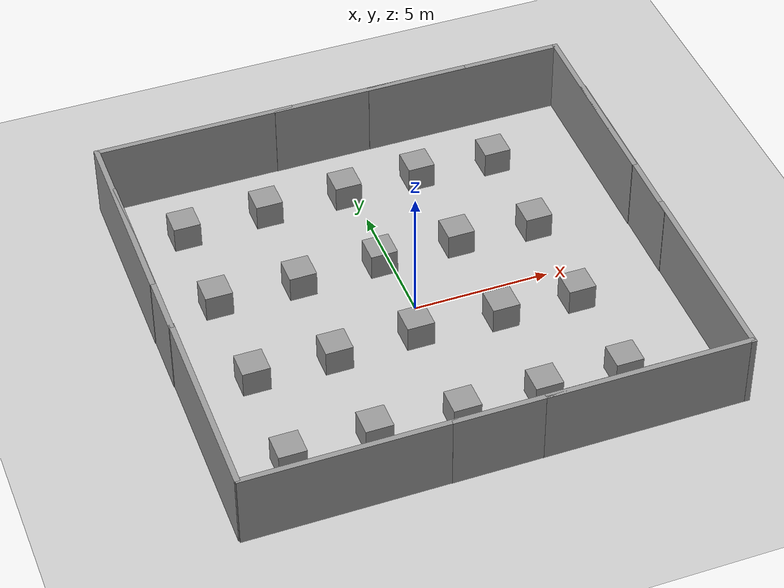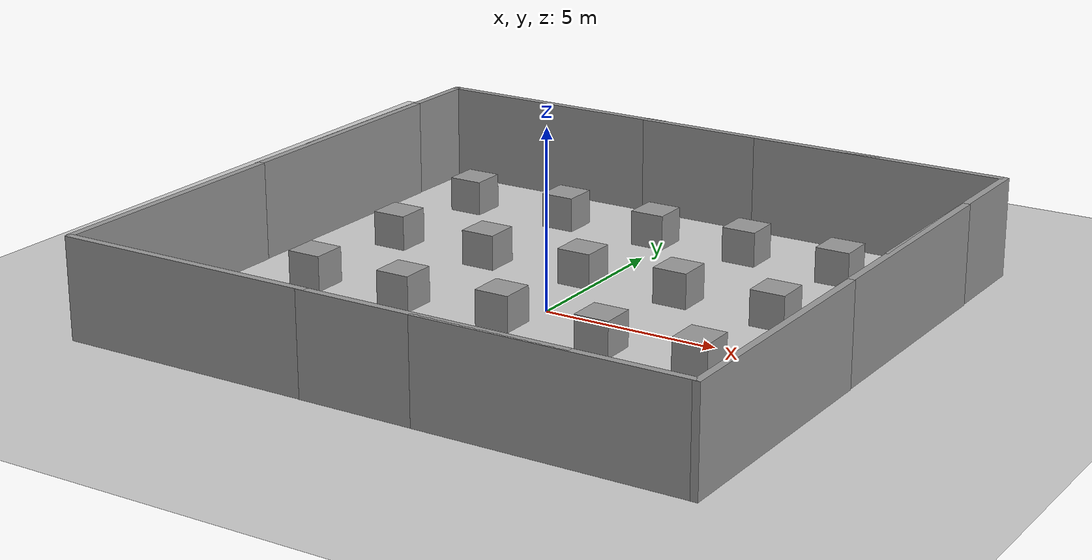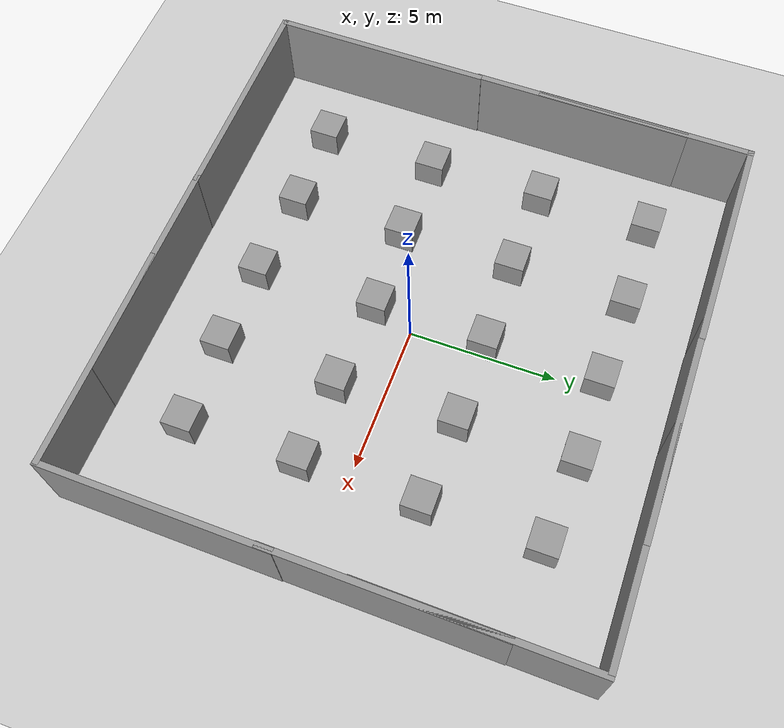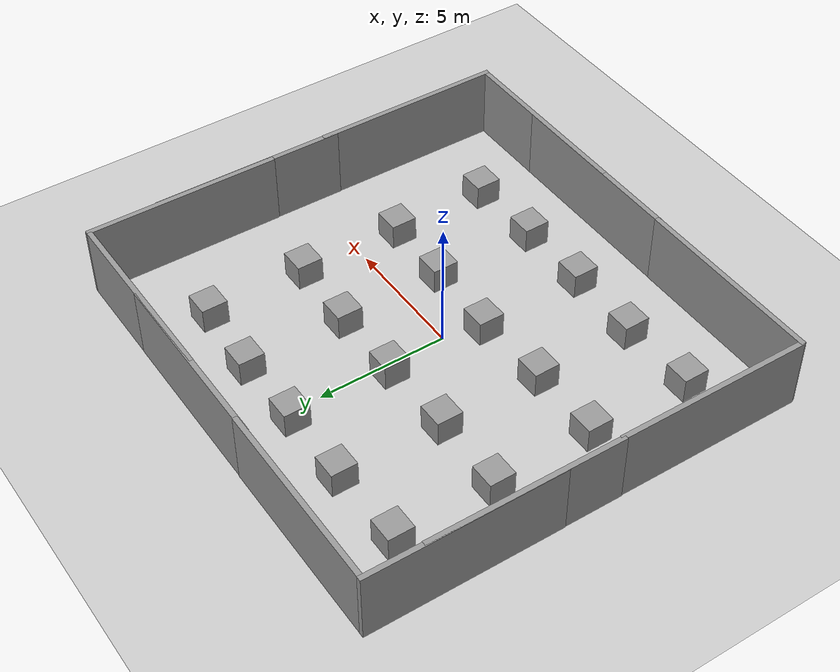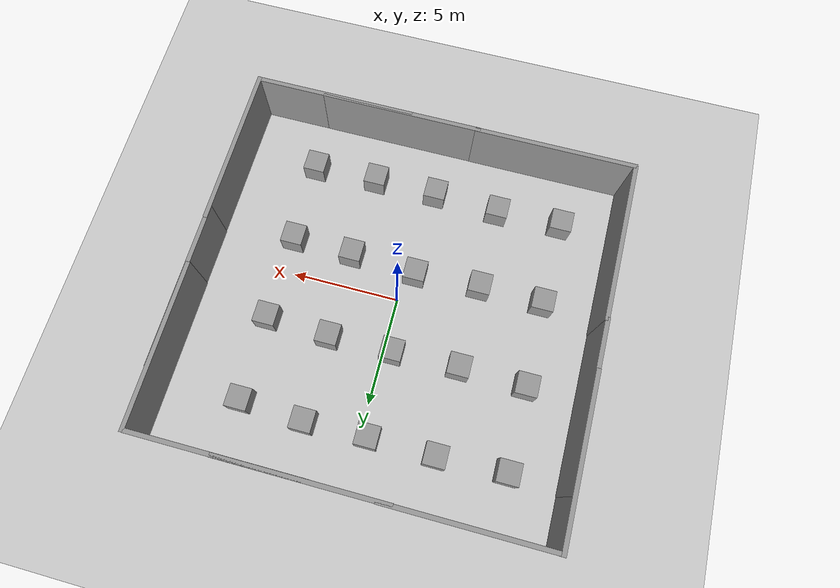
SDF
<sdf version="1.6">
 <world name="chase">
  <light name="sun" type="directional">
   <pose>0 0 10 0 -0 0</pose>
   <diffuse>0.8 0.8 0.8 1</diffuse>
   <specular>0.1 0.1 0.1 1</specular>
   <attenuation>
    <range>1000</range>
    <constant>0.9</constant>
    <linear>0.01</linear>
    <quadratic>0.001</quadratic>
   </attenuation>
   <direction>-0.5 0.5 -1</direction>
  </light>
  <model name="ground_plane">
   <static>1</static>
   <link name="link">
    <collision name="collision">
     <geometry><plane><normal>0 0 1</normal><size>100 100</size></plane></geometry>
     <surface><friction><ode><mu>100</mu><mu2>50</mu2></ode></friction></surface>
    </collision>
    <visual name="visual">
     <cast_shadows>0</cast_shadows>
     <geometry><plane><normal>0 0 1</normal><size>100 100</size></plane></geometry>
     <material>
      <script><uri>file://media/materials/scripts/gazebo.material</uri><name>Gazebo/Grey</name></script>
     </material>
    </visual>
   </link>
  </model>
  <gravity>0 0 -9.8</gravity>
  <magnetic_field>6e-06 2.3e-05 -4.2e-05</magnetic_field>
  <atmosphere type="adiabatic"/>
  <physics name="default_physics" default="0" type="ode">
   <max_step_size>0.001</max_step_size>
   <real_time_factor>1</real_time_factor>
   <real_time_update_rate>1000</real_time_update_rate>
  </physics>
  <scene><ambient>0.4 0.4 0.4 1</ambient><background>0.7 0.7 0.7 1</background><shadows>1</shadows></scene>
  <spherical_coordinates>
   <surface_model>EARTH_WGS84</surface_model>
   <latitude_deg>0</latitude_deg>
   <longitude_deg>0</longitude_deg>
   <elevation>0</elevation>
   <heading_deg>0</heading_deg>
  </spherical_coordinates>
  <model name="grey_wall">
   <static>1</static>
   <link name="link">
    <pose>0 0 1.4 0 -0 0</pose>
    <collision name="collision"><geometry><box><size>7.5 0.2 2.8</size></box></geometry></collision>
    <visual name="visual">
     <cast_shadows>0</cast_shadows>
     <geometry><box><size>7.5 0.2 2.8</size></box></geometry>
     <material>
      <script>
       <uri>model://grey_wall/materials/scripts</uri>
       <uri>model://grey_wall/materials/textures</uri>
       <name>vrc/grey_wall</name>
      </script>
     </material>
    </visual>
   </link>
   <pose>-5.31955 -8.0721 0 0 -0 0</pose>
  </model>
  <model name="grey_wall_clone">
   <static>1</static>
   <link name="link">
    <pose>0 0 1.4 0 -0 0</pose>
    <collision name="collision"><geometry><box><size>7.5 0.2 2.8</size></box></geometry></collision>
    <visual name="visual">
     <cast_shadows>0</cast_shadows>
     <geometry><box><size>7.5 0.2 2.8</size></box></geometry>
     <material>
      <script>
       <uri>model://grey_wall/materials/scripts</uri>
       <uri>model://grey_wall/materials/textures</uri>
       <name>vrc/grey_wall</name>
      </script>
     </material>
    </visual>
   </link>
   <pose>1.94381 -8.08113 0 0 -0 0</pose>
  </model>
  <model name="grey_wall_clone_0">
   <static>1</static>
   <link name="link">
    <pose>0 0 1.4 0 -0 0</pose>
    <collision name="collision"><geometry><box><size>7.5 0.2 2.8</size></box></geometry></collision>
    <visual name="visual">
     <cast_shadows>0</cast_shadows>
     <geometry><box><size>7.5 0.2 2.8</size></box></geometry>
     <material>
      <script>
       <uri>model://grey_wall/materials/scripts</uri>
       <uri>model://grey_wall/materials/textures</uri>
       <name>vrc/grey_wall</name>
      </script>
     </material>
    </visual>
   </link>
   <pose>5.18635 -8.08529 0 0 -0 0</pose>
  </model>
  <model name="grey_wall_clone_1">
   <static>1</static>
   <link name="link">
    <pose>0 0 1.4 0 -0 0</pose>
    <collision name="collision"><geometry><box><size>7.5 0.2 2.8</size></box></geometry></collision>
    <visual name="visual">
     <cast_shadows>0</cast_shadows>
     <geometry><box><size>7.5 0.2 2.8</size></box></geometry>
     <material>
      <script>
       <uri>model://grey_wall/materials/scripts</uri>
       <uri>model://grey_wall/materials/textures</uri>
       <name>vrc/grey_wall</name>
      </script>
     </material>
    </visual>
   </link>
   <pose>-5.2187 8.89135 0 0 -0 0</pose>
  </model>
  <model name="grey_wall_clone_2">
   <static>1</static>
   <link name="link">
    <pose>0 0 1.4 0 -0 0</pose>
    <collision name="collision"><geometry><box><size>7.5 0.2 2.8</size></box></geometry></collision>
    <visual name="visual">
     <cast_shadows>0</cast_shadows>
     <geometry><box><size>7.5 0.2 2.8</size></box></geometry>
     <material>
      <script>
       <uri>model://grey_wall/materials/scripts</uri>
       <uri>model://grey_wall/materials/textures</uri>
       <name>vrc/grey_wall</name>
      </script>
     </material>
    </visual>
   </link>
   <pose>1.56864 8.87538 0 0 -0 0</pose>
  </model>
  <model name="grey_wall_clone_2_clone">
   <static>1</static>
   <link name="link">
    <pose>0 0 1.4 0 -0 0</pose>
    <collision name="collision"><geometry><box><size>7.5 0.2 2.8</size></box></geometry></collision>
    <visual name="visual">
     <cast_shadows>0</cast_shadows>
     <geometry><box><size>7.5 0.2 2.8</size></box></geometry>
     <material>
      <script>
       <uri>model://grey_wall/materials/scripts</uri>
       <uri>model://grey_wall/materials/textures</uri>
       <name>vrc/grey_wall</name>
      </script>
     </material>
    </visual>
   </link>
   <pose>5.21808 8.86699 0 0 -0 0</pose>
  </model>
  <model name="grey_wall_clone_2_clone_0">
   <static>1</static>
   <link name="link">
    <pose>0 0 1.4 0 -0 0</pose>
    <collision name="collision"><geometry><box><size>7.5 0.2 2.8</size></box></geometry></collision>
    <visual name="visual">
     <cast_shadows>0</cast_shadows>
     <geometry><box><size>7.5 0.2 2.8</size></box></geometry>
     <material>
      <script>
       <uri>model://grey_wall/materials/scripts</uri>
       <uri>model://grey_wall/materials/textures</uri>
       <name>vrc/grey_wall</name>
      </script>
     </material>
    </visual>
   </link>
   <pose>-8.96704 -4.34279 0 0 0 -1.58054</pose>
  </model>
  <model name="grey_wall_clone_2_clone_0_clone">
   <static>1</static>
   <link name="link">
    <pose>0 0 1.4 0 -0 0</pose>
    <collision name="collision"><geometry><box><size>7.5 0.2 2.8</size></box></geometry></collision>
    <visual name="visual">
     <cast_shadows>0</cast_shadows>
     <geometry><box><size>7.5 0.2 2.8</size></box></geometry>
     <material>
      <script>
       <uri>model://grey_wall/materials/scripts</uri>
       <uri>model://grey_wall/materials/textures</uri>
       <name>vrc/grey_wall</name>
      </script>
     </material>
    </visual>
   </link>
   <pose>-8.91912 2.99652 0 0 0 -1.58054</pose>
  </model>
  <model name="grey_wall_clone_2_clone_0_clone_0">
   <static>1</static>
   <link name="link">
    <pose>0 0 1.4 0 -0 0</pose>
    <collision name="collision"><geometry><box><size>7.5 0.2 2.8</size></box></geometry></collision>
    <visual name="visual">
     <cast_shadows>0</cast_shadows>
     <geometry><box><size>7.5 0.2 2.8</size></box></geometry>
     <material>
      <script>
       <uri>model://grey_wall/materials/scripts</uri>
       <uri>model://grey_wall/materials/textures</uri>
       <name>vrc/grey_wall</name>
      </script>
     </material>
    </visual>
   </link>
   <pose>-8.91563 5.24699 0 0 0 -1.58054</pose>
  </model>
  <model name="grey_wall_clone_2_clone_0_clone_1">
   <static>1</static>
   <link name="link">
    <pose>0 0 1.4 0 -0 0</pose>
    <collision name="collision"><geometry><box><size>7.5 0.2 2.8</size></box></geometry></collision>
    <visual name="visual">
     <cast_shadows>0</cast_shadows>
     <geometry><box><size>7.5 0.2 2.8</size></box></geometry>
     <material>
      <script>
       <uri>model://grey_wall/materials/scripts</uri>
       <uri>model://grey_wall/materials/textures</uri>
       <name>vrc/grey_wall</name>
      </script>
     </material>
    </visual>
   </link>
   <pose>8.91344 -4.44352 0 0 0 -1.58054</pose>
  </model>
  <model name="grey_wall_clone_2_clone_0_clone_2">
   <static>1</static>
   <link name="link">
    <pose>0 0 1.4 0 -0 0</pose>
    <collision name="collision"><geometry><box><size>7.5 0.2 2.8</size></box></geometry></collision>
    <visual name="visual">
     <cast_shadows>0</cast_shadows>
     <geometry><box><size>7.5 0.2 2.8</size></box></geometry>
     <material>
      <script>
       <uri>model://grey_wall/materials/scripts</uri>
       <uri>model://grey_wall/materials/textures</uri>
       <name>vrc/grey_wall</name>
      </script>
     </material>
    </visual>
   </link>
   <pose>8.96392 2.48264 0 0 0 -1.58054</pose>
  </model>
  <model name="grey_wall_clone_2_clone_0_clone_3">
   <static>1</static>
   <link name="link">
    <pose>0 0 1.4 0 -0 0</pose>
    <collision name="collision"><geometry><box><size>7.5 0.2 2.8</size></box></geometry></collision>
    <visual name="visual">
     <cast_shadows>0</cast_shadows>
     <geometry><box><size>7.5 0.2 2.8</size></box></geometry>
     <material>
      <script>
       <uri>model://grey_wall/materials/scripts</uri>
       <uri>model://grey_wall/materials/textures</uri>
       <name>vrc/grey_wall</name>
      </script>
     </material>
    </visual>
   </link>
   <pose>8.96917 5.20949 0 0 0 -1.58054</pose>
  </model>
  <model name="unit_box_0">
   <pose>-6.53901 -5.52253 0.499995 0 1e-05 0</pose>
   <link name="link">
    <inertial>
     <mass>1</mass>
     <inertia>
      <ixx>0.166667</ixx>
      <ixy>0</ixy>
      <ixz>0</ixz>
      <iyy>0.166667</iyy>
      <iyz>0</iyz>
      <izz>0.166667</izz>
     </inertia>
    </inertial>
    <collision name="collision"><geometry><box><size>1 1 1</size></box></geometry></collision>
    <visual name="visual">
     <geometry><box><size>1 1 1</size></box></geometry>
     <material>
      <script><name>Gazebo/Grey</name><uri>file://media/materials/scripts/gazebo.material</uri></script>
     </material>
    </visual>
   </link>
  </model>
  <model name="unit_box_1">
   <pose>-3.49397 -5.4374 0.499995 0 1e-05 0</pose>
   <link name="link">
    <inertial>
     <mass>1</mass>
     <inertia>
      <ixx>0.166667</ixx>
      <ixy>0</ixy>
      <ixz>0</ixz>
      <iyy>0.166667</iyy>
      <iyz>0</iyz>
      <izz>0.166667</izz>
     </inertia>
    </inertial>
    <collision name="collision"><geometry><box><size>1 1 1</size></box></geometry></collision>
    <visual name="visual">
     <geometry><box><size>1 1 1</size></box></geometry>
     <material>
      <script><name>Gazebo/Grey</name><uri>file://media/materials/scripts/gazebo.material</uri></script>
     </material>
    </visual>
   </link>
  </model>
  <model name="unit_box_2">
   <pose>-0.433784 -5.58887 0.499995 -1e-05 0 0</pose>
   <link name="link">
    <inertial>
     <mass>1</mass>
     <inertia>
      <ixx>0.166667</ixx>
      <ixy>0</ixy>
      <ixz>0</ixz>
      <iyy>0.166667</iyy>
      <iyz>0</iyz>
      <izz>0.166667</izz>
     </inertia>
    </inertial>
    <collision name="collision"><geometry><box><size>1 1 1</size></box></geometry></collision>
    <visual name="visual">
     <geometry><box><size>1 1 1</size></box></geometry>
     <material>
      <script><name>Gazebo/Grey</name><uri>file://media/materials/scripts/gazebo.material</uri></script>
     </material>
    </visual>
   </link>
  </model>
  <model name="unit_box_3">
   <pose>2.51567 -5.59157 0.499995 0 1e-05 0</pose>
   <link name="link">
    <inertial>
     <mass>1</mass>
     <inertia>
      <ixx>0.166667</ixx>
      <ixy>0</ixy>
      <ixz>0</ixz>
      <iyy>0.166667</iyy>
      <iyz>0</iyz>
      <izz>0.166667</izz>
     </inertia>
    </inertial>
    <collision name="collision"><geometry><box><size>1 1 1</size></box></geometry></collision>
    <visual name="visual">
     <geometry><box><size>1 1 1</size></box></geometry>
     <material>
      <script><name>Gazebo/Grey</name><uri>file://media/materials/scripts/gazebo.material</uri></script>
     </material>
    </visual>
   </link>
  </model>
  <model name="unit_box_4">
   <pose>5.50052 -5.52123 0.499995 -1e-05 0 0</pose>
   <link name="link">
    <inertial>
     <mass>1</mass>
     <inertia>
      <ixx>0.166667</ixx>
      <ixy>0</ixy>
      <ixz>0</ixz>
      <iyy>0.166667</iyy>
      <iyz>0</iyz>
      <izz>0.166667</izz>
     </inertia>
    </inertial>
    <collision name="collision"><geometry><box><size>1 1 1</size></box></geometry></collision>
    <visual name="visual">
     <geometry><box><size>1 1 1</size></box></geometry>
     <material>
      <script><name>Gazebo/Grey</name><uri>file://media/materials/scripts/gazebo.material</uri></script>
     </material>
    </visual>
   </link>
  </model>
  <model name="unit_box_5">
   <pose>-3.52486 -1.53003 0.499995 0 1e-05 0</pose>
   <link name="link">
    <inertial>
     <mass>1</mass>
     <inertia>
      <ixx>0.166667</ixx>
      <ixy>0</ixy>
      <ixz>0</ixz>
      <iyy>0.166667</iyy>
      <iyz>0</iyz>
      <izz>0.166667</izz>
     </inertia>
    </inertial>
    <collision name="collision"><geometry><box><size>1 1 1</size></box></geometry></collision>
    <visual name="visual">
     <geometry><box><size>1 1 1</size></box></geometry>
     <material>
      <script><name>Gazebo/Grey</name><uri>file://media/materials/scripts/gazebo.material</uri></script>
     </material>
    </visual>
   </link>
  </model>
  <model name="unit_box_6">
   <pose>-6.47648 -1.48881 0.499995 -1e-05 0 0</pose>
   <link name="link">
    <inertial>
     <mass>1</mass>
     <inertia>
      <ixx>0.166667</ixx>
      <ixy>0</ixy>
      <ixz>0</ixz>
      <iyy>0.166667</iyy>
      <iyz>0</iyz>
      <izz>0.166667</izz>
     </inertia>
    </inertial>
    <collision name="collision"><geometry><box><size>1 1 1</size></box></geometry></collision>
    <visual name="visual">
     <geometry><box><size>1 1 1</size></box></geometry>
     <material>
      <script><name>Gazebo/Grey</name><uri>file://media/materials/scripts/gazebo.material</uri></script>
     </material>
    </visual>
   </link>
  </model>
  <model name="unit_box_7">
   <pose>-0.500141 -1.38683 0.499995 0 1e-05 0</pose>
   <link name="link">
    <inertial>
     <mass>1</mass>
     <inertia>
      <ixx>0.166667</ixx>
      <ixy>0</ixy>
      <ixz>0</ixz>
      <iyy>0.166667</iyy>
      <iyz>0</iyz>
      <izz>0.166667</izz>
     </inertia>
    </inertial>
    <collision name="collision"><geometry><box><size>1 1 1</size></box></geometry></collision>
    <visual name="visual">
     <geometry><box><size>1 1 1</size></box></geometry>
     <material>
      <script><name>Gazebo/Grey</name><uri>file://media/materials/scripts/gazebo.material</uri></script>
     </material>
    </visual>
   </link>
  </model>
  <model name="unit_box_8">
   <pose>2.59645 -1.57533 0.499995 -1e-05 0 0</pose>
   <link name="link">
    <inertial>
     <mass>1</mass>
     <inertia>
      <ixx>0.166667</ixx>
      <ixy>0</ixy>
      <ixz>0</ixz>
      <iyy>0.166667</iyy>
      <iyz>0</iyz>
      <izz>0.166667</izz>
     </inertia>
    </inertial>
    <collision name="collision"><geometry><box><size>1 1 1</size></box></geometry></collision>
    <visual name="visual">
     <geometry><box><size>1 1 1</size></box></geometry>
     <material>
      <script><name>Gazebo/Grey</name><uri>file://media/materials/scripts/gazebo.material</uri></script>
     </material>
    </visual>
   </link>
  </model>
  <model name="unit_box_9">
   <pose>-6.5442 2.49398 0.499995 0 1e-05 0</pose>
   <link name="link">
    <inertial>
     <mass>1</mass>
     <inertia>
      <ixx>0.166667</ixx>
      <ixy>0</ixy>
      <ixz>0</ixz>
      <iyy>0.166667</iyy>
      <iyz>0</iyz>
      <izz>0.166667</izz>
     </inertia>
    </inertial>
    <collision name="collision"><geometry><box><size>1 1 1</size></box></geometry></collision>
    <visual name="visual">
     <geometry><box><size>1 1 1</size></box></geometry>
     <material>
      <script><name>Gazebo/Grey</name><uri>file://media/materials/scripts/gazebo.material</uri></script>
     </material>
    </visual>
   </link>
  </model>
  <model name="unit_box_10">
   <pose>-6.53837 6.33009 0.499995 -1e-05 0 0</pose>
   <link name="link">
    <inertial>
     <mass>1</mass>
     <inertia>
      <ixx>0.166667</ixx>
      <ixy>0</ixy>
      <ixz>0</ixz>
      <iyy>0.166667</iyy>
      <iyz>0</iyz>
      <izz>0.166667</izz>
     </inertia>
    </inertial>
    <collision name="collision"><geometry><box><size>1 1 1</size></box></geometry></collision>
    <visual name="visual">
     <geometry><box><size>1 1 1</size></box></geometry>
     <material>
      <script><name>Gazebo/Grey</name><uri>file://media/materials/scripts/gazebo.material</uri></script>
     </material>
    </visual>
   </link>
  </model>
  <model name="unit_box_11">
   <pose>-3.48162 2.4151 0.499995 0 1e-05 0</pose>
   <link name="link">
    <inertial>
     <mass>1</mass>
     <inertia>
      <ixx>0.166667</ixx>
      <ixy>0</ixy>
      <ixz>0</ixz>
      <iyy>0.166667</iyy>
      <iyz>0</iyz>
      <izz>0.166667</izz>
     </inertia>
    </inertial>
    <collision name="collision"><geometry><box><size>1 1 1</size></box></geometry></collision>
    <visual name="visual">
     <geometry><box><size>1 1 1</size></box></geometry>
     <material>
      <script><name>Gazebo/Grey</name><uri>file://media/materials/scripts/gazebo.material</uri></script>
     </material>
    </visual>
   </link>
  </model>
  <model name="unit_box_12">
   <pose>-0.419805 2.48365 0.499995 -1e-05 0 0</pose>
   <link name="link">
    <inertial>
     <mass>1</mass>
     <inertia>
      <ixx>0.166667</ixx>
      <ixy>0</ixy>
      <ixz>0</ixz>
      <iyy>0.166667</iyy>
      <iyz>0</iyz>
      <izz>0.166667</izz>
     </inertia>
    </inertial>
    <collision name="collision"><geometry><box><size>1 1 1</size></box></geometry></collision>
    <visual name="visual">
     <geometry><box><size>1 1 1</size></box></geometry>
     <material>
      <script><name>Gazebo/Grey</name><uri>file://media/materials/scripts/gazebo.material</uri></script>
     </material>
    </visual>
   </link>
  </model>
  <model name="unit_box_13">
   <pose>2.52992 2.51567 0.499995 0 1e-05 0</pose>
   <link name="link">
    <inertial>
     <mass>1</mass>
     <inertia>
      <ixx>0.166667</ixx>
      <ixy>0</ixy>
      <ixz>0</ixz>
      <iyy>0.166667</iyy>
      <iyz>0</iyz>
      <izz>0.166667</izz>
     </inertia>
    </inertial>
    <collision name="collision"><geometry><box><size>1 1 1</size></box></geometry></collision>
    <visual name="visual">
     <geometry><box><size>1 1 1</size></box></geometry>
     <material>
      <script><name>Gazebo/Grey</name><uri>file://media/materials/scripts/gazebo.material</uri></script>
     </material>
    </visual>
   </link>
  </model>
  <model name="unit_box_14">
   <pose>5.47835 2.36325 0.499995 -1e-05 0 0</pose>
   <link name="link">
    <inertial>
     <mass>1</mass>
     <inertia>
      <ixx>0.166667</ixx>
      <ixy>0</ixy>
      <ixz>0</ixz>
      <iyy>0.166667</iyy>
      <iyz>0</iyz>
      <izz>0.166667</izz>
     </inertia>
    </inertial>
    <collision name="collision"><geometry><box><size>1 1 1</size></box></geometry></collision>
    <visual name="visual">
     <geometry><box><size>1 1 1</size></box></geometry>
     <material>
      <script><name>Gazebo/Grey</name><uri>file://media/materials/scripts/gazebo.material</uri></script>
     </material>
    </visual>
   </link>
  </model>
  <model name="unit_box_15">
   <pose>5.43387 -1.65291 0.499995 0 1e-05 0</pose>
   <link name="link">
    <inertial>
     <mass>1</mass>
     <inertia>
      <ixx>0.166667</ixx>
      <ixy>0</ixy>
      <ixz>0</ixz>
      <iyy>0.166667</iyy>
      <iyz>0</iyz>
      <izz>0.166667</izz>
     </inertia>
    </inertial>
    <collision name="collision"><geometry><box><size>1 1 1</size></box></geometry></collision>
    <visual name="visual">
     <geometry><box><size>1 1 1</size></box></geometry>
     <material>
      <script><name>Gazebo/Grey</name><uri>file://media/materials/scripts/gazebo.material</uri></script>
     </material>
    </visual>
   </link>
  </model>
  <model name="unit_box_16">
   <pose>-3.40101 6.4344 0.499995 -1e-05 0 0</pose>
   <link name="link">
    <inertial>
     <mass>1</mass>
     <inertia>
      <ixx>0.166667</ixx>
      <ixy>0</ixy>
      <ixz>0</ixz>
      <iyy>0.166667</iyy>
      <iyz>0</iyz>
      <izz>0.166667</izz>
     </inertia>
    </inertial>
    <collision name="collision"><geometry><box><size>1 1 1</size></box></geometry></collision>
    <visual name="visual">
     <geometry><box><size>1 1 1</size></box></geometry>
     <material>
      <script><name>Gazebo/Grey</name><uri>file://media/materials/scripts/gazebo.material</uri></script>
     </material>
    </visual>
   </link>
  </model>
  <model name="unit_box_17">
   <pose>-0.376259 6.3919 0.499995 0 1e-05 0</pose>
   <link name="link">
    <inertial>
     <mass>1</mass>
     <inertia>
      <ixx>0.166667</ixx>
      <ixy>0</ixy>
      <ixz>0</ixz>
      <iyy>0.166667</iyy>
      <iyz>0</iyz>
      <izz>0.166667</izz>
     </inertia>
    </inertial>
    <collision name="collision"><geometry><box><size>1 1 1</size></box></geometry></collision>
    <visual name="visual">
     <geometry><box><size>1 1 1</size></box></geometry>
     <material>
      <script><name>Gazebo/Grey</name><uri>file://media/materials/scripts/gazebo.material</uri></script>
     </material>
    </visual>
   </link>
  </model>
  <model name="unit_box_18">
   <pose>2.49998 6.46014 0.499995 -1e-05 0 0</pose>
   <link name="link">
    <inertial>
     <mass>1</mass>
     <inertia>
      <ixx>0.166667</ixx>
      <ixy>0</ixy>
      <ixz>0</ixz>
      <iyy>0.166667</iyy>
      <iyz>0</iyz>
      <izz>0.166667</izz>
     </inertia>
    </inertial>
    <collision name="collision"><geometry><box><size>1 1 1</size></box></geometry></collision>
    <visual name="visual">
     <geometry><box><size>1 1 1</size></box></geometry>
     <material>
      <script><name>Gazebo/Grey</name><uri>file://media/materials/scripts/gazebo.material</uri></script>
     </material>
    </visual>
   </link>
  </model>
  <model name="unit_box_19">
   <pose>5.44874 6.27032 0.5 0 -0 0</pose>
   <link name="link">
    <inertial>
     <mass>1</mass>
     <inertia>
      <ixx>0.166667</ixx>
      <ixy>0</ixy>
      <ixz>0</ixz>
      <iyy>0.166667</iyy>
      <iyz>0</iyz>
      <izz>0.166667</izz>
     </inertia>
    </inertial>
    <collision name="collision"><geometry><box><size>1 1 1</size></box></geometry></collision>
    <visual name="visual">
     <geometry><box><size>1 1 1</size></box></geometry>
     <material>
      <script><name>Gazebo/Grey</name><uri>file://media/materials/scripts/gazebo.material</uri></script>
     </material>
    </visual>
   </link>
  </model>
 </world>
</sdf>
